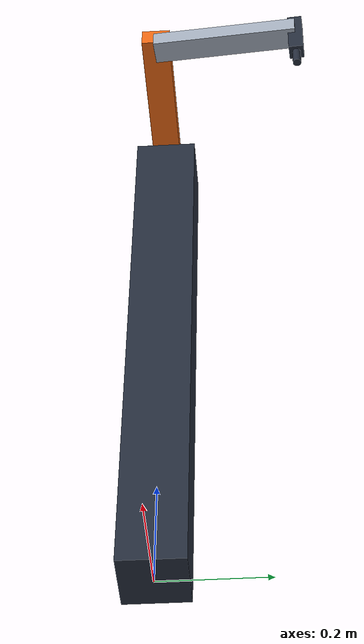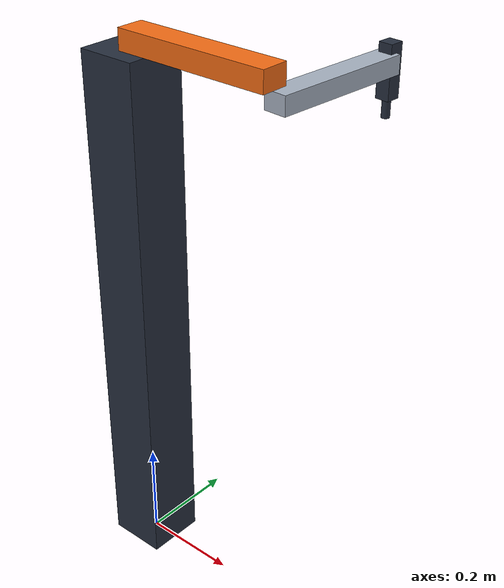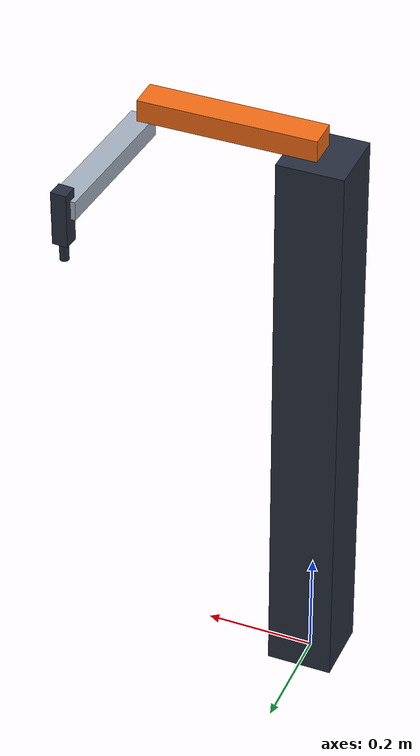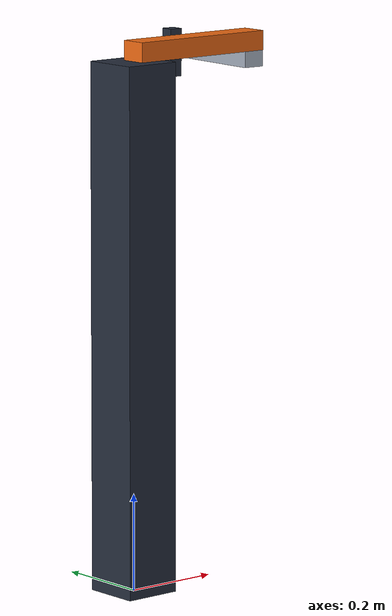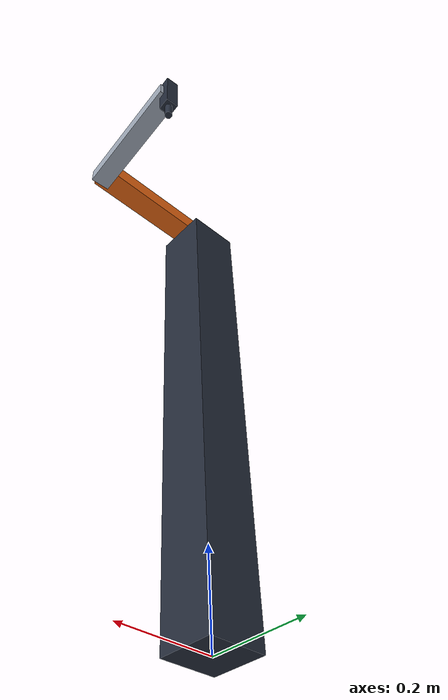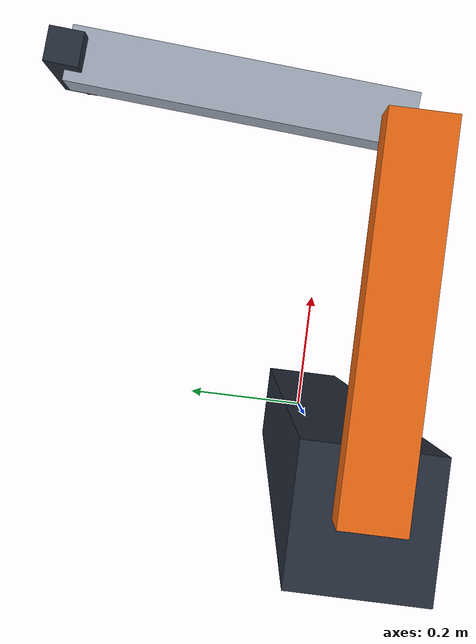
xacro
<?xml version="1.0"?>
<robot name="scara" xmlns:xacro="http://www.ros.org/wiki/xacro">
  <xacro:arg name="controllers" default=""/>
  <material name="silver"><color rgba="0.65 0.69 0.75 1"/></material>
  <material name="orange"><color rgba="0.95 0.42 0.08 1"/></material>
  <material name="dark"><color rgba="0.15 0.18 0.24 1"/></material>
  <xacro:macro name="box_body" params="mass x y z ox oy oz material">
    <inertial><origin xyz="${ox} ${oy} ${oz}"/><mass value="${mass}"/>
      <inertia ixx="${mass*(y*y+z*z)/12}" ixy="0" ixz="0"
               iyy="${mass*(x*x+z*z)/12}" iyz="0" izz="${mass*(x*x+y*y)/12}"/>
    </inertial>
    <visual><origin xyz="${ox} ${oy} ${oz}"/><geometry><box size="${x} ${y} ${z}"/></geometry><material name="${material}"/></visual>
    <collision><origin xyz="${ox} ${oy} ${oz}"/><geometry><box size="${x} ${y} ${z}"/></geometry></collision>
  </xacro:macro>
  <link name="world"/>
  <joint name="world_fixed" type="fixed"><parent link="world"/><child link="base_link"/></joint>
  <link name="base_link"><xacro:box_body mass="20" x="0.12" y="0.12" z="1.08" ox="0" oy="0" oz="0.54" material="dark"/></link>
  <joint name="joint1" type="revolute">
    <parent link="base_link"/><child link="upper_arm"/><origin xyz="0 0 1.10"/><axis xyz="0 0 1"/>
    <limit lower="-2.6" upper="2.6" effort="100" velocity="0.7"/><dynamics damping="1.0" friction="0.1"/>
  </joint>
  <link name="upper_arm"><xacro:box_body mass="2" x="0.32" y="0.055" z="0.04" ox="0.16" oy="0" oz="0" material="orange"/></link>
  <joint name="joint2" type="revolute">
    <parent link="upper_arm"/><child link="forearm"/><origin xyz="0.32 0 0"/><axis xyz="0 0 1"/>
    <limit lower="0.15" upper="2.85" effort="100" velocity="0.7"/><dynamics damping="1.0" friction="0.1"/>
  </joint>
  <link name="forearm"><xacro:box_body mass="1.5" x="0.28" y="0.045" z="0.035" ox="0.14" oy="0" oz="-0.04" material="silver"/></link>
  <joint name="joint3" type="prismatic">
    <parent link="forearm"/><child link="carriage"/><origin xyz="0.28 0 -0.06"/><axis xyz="0 0 -1"/>
    <limit lower="0" upper="0.28" effort="200" velocity="0.1"/><dynamics damping="3" friction="0.1"/>
  </joint>
  <link name="carriage"><xacro:box_body mass="0.3" x="0.028" y="0.028" z="0.10" ox="0" oy="0" oz="0.005" material="dark"/></link>
  <joint name="joint4" type="revolute">
    <parent link="carriage"/><child link="nozzle_link"/><origin xyz="0 0 -0.08"/><axis xyz="0 0 1"/>
    <limit lower="-3.141592653589793" upper="3.141592653589793" effort="10" velocity="1"/><dynamics damping="0.2"/>
  </joint>
  <!-- nozzle_link origin is the bottom suction contact point (TCP), facing -Z. -->
  <link name="nozzle_link">
    <inertial><origin xyz="0 0 0.025"/><mass value="0.08"/><inertia ixx="0.00002" ixy="0" ixz="0" iyy="0.00002" iyz="0" izz="0.00001"/></inertial>
    <visual><origin xyz="0 0 0.025"/><geometry><cylinder radius="0.008" length="0.05"/></geometry><material name="dark"/></visual>
    <collision><origin xyz="0 0 0.025"/><geometry><cylinder radius="0.008" length="0.05"/></geometry></collision>
  </link>
  <ros2_control name="GazeboSimSystem" type="system">
    <hardware><plugin>gz_ros2_control/GazeboSimSystem</plugin></hardware>
    <joint name="joint1"><command_interface name="position"/><state_interface name="position"><param name="initial_value">-0.7</param></state_interface><state_interface name="velocity"/></joint>
    <joint name="joint2"><command_interface name="position"/><state_interface name="position"><param name="initial_value">1.4</param></state_interface><state_interface name="velocity"/></joint>
    <joint name="joint3"><command_interface name="position"/><state_interface name="position"><param name="initial_value">0.06</param></state_interface><state_interface name="velocity"/></joint>
    <joint name="joint4"><command_interface name="position"/><state_interface name="position"><param name="initial_value">-0.7</param></state_interface><state_interface name="velocity"/></joint>
  </ros2_control>
  <gazebo><plugin filename="libgz_ros2_control-system.so" name="gz_ros2_control::GazeboSimROS2ControlPlugin">
    <parameters>$(arg controllers)</parameters><controller_manager_prefix_node_name>controller_manager</controller_manager_prefix_node_name>
  </plugin></gazebo>
  <gazebo reference="upper_arm"><material>Gazebo/Orange</material></gazebo>
  <gazebo reference="forearm"><material>Gazebo/Grey</material></gazebo>
</robot>
